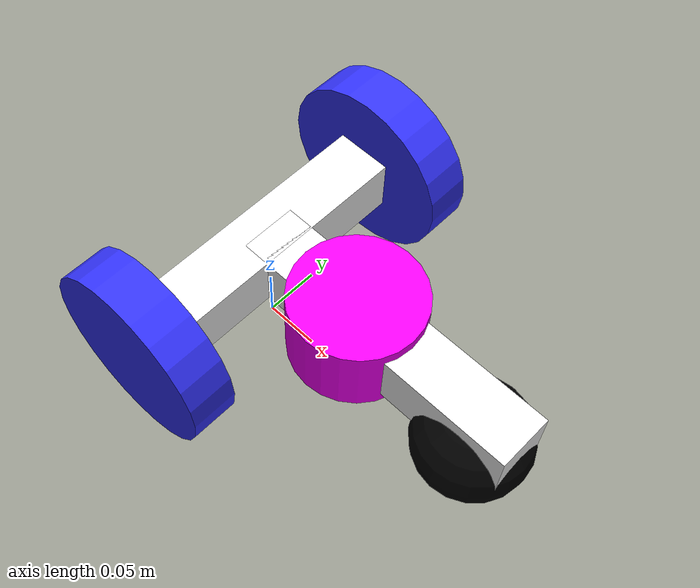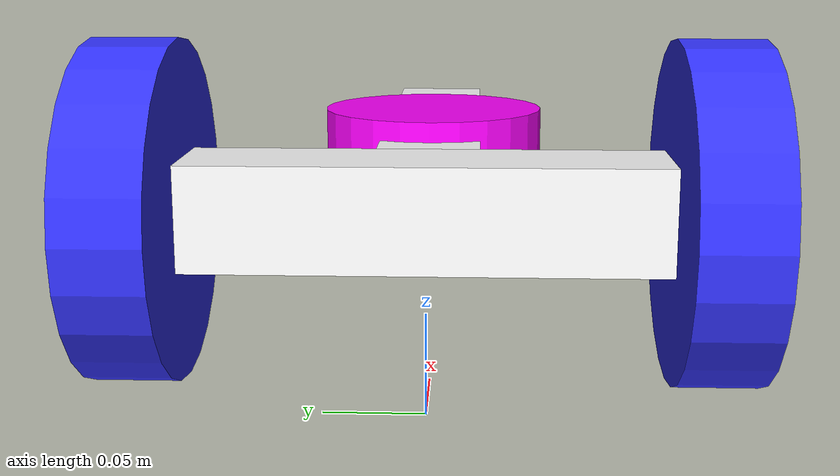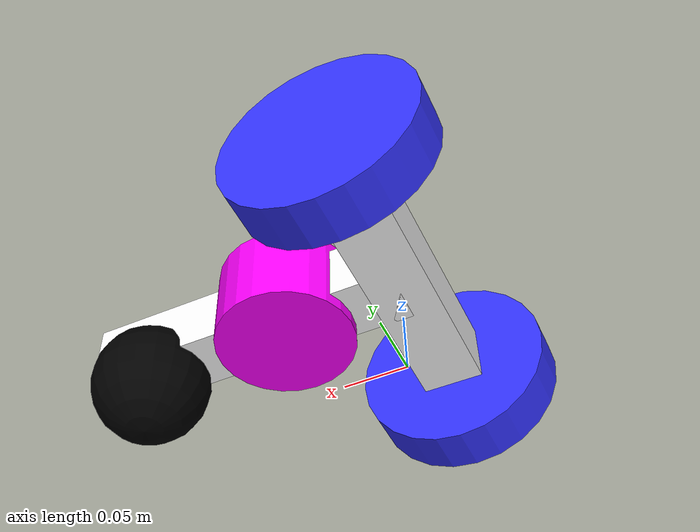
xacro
<?xml version="1.0"?>
<robot xmlns:xacro="http://www.ros.org/wiki/xacro"  name="robot">

    <xacro:include filename="robot_core.xacro"/>
    <xacro:include filename="lidar.xacro" />

    <xacro:include filename="ros2_control.xacro" />

</robot>

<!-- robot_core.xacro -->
<robot xmlns:xacro="http://www.ros.org/wiki/xacro">

    <!-- EDIT ROBOT DESCRIPTION HERE -->
    <xacro:property name="chassis_width" value="0.05" />
    <xacro:property name="chassis_length" value="0.266" />
    <xacro:property name="chassis_height" value="0.05" />

    <xacro:property name="wheel_radius" value="0.08" />
    <xacro:property name="wheel_thickness" value="0.04" />

    <xacro:include filename="inertial_macros.xacro" />

    <material name="white">
        <color rgba="1 1 1 1" />
    </material>

    <material name="orange">
        <color rgba="1 0.3 0.1 1"/>
    </material>

    <material name="blue">
        <color rgba="0.2 0.2 1 1"/>
    </material>

    <material name="black">
        <color rgba="0 0 0 1"/>
    </material>

    <material name="red">
        <color rgba="1 0 0 1"/>
    </material>

    <material name="yellow">
        <color rgba="1 1 0 1"/>
    </material>

    <material name="magenta">
        <color rgba="1 0 1 1" />
    </material>

    <link name="world_link">

    </link>

    <joint name="world_to_base_joint" type="fixed">
        <parent link="world_link" />
        <child link="base_link" />
        <origin xyz="0 0 0.02" />
    </joint>

    <!-- BASE LINK -->

    <link name="base_link">

    </link>

    <!-- BASE_FOOTPRINT LINK -->
    <joint name="base_footprint_joint" type="fixed">
        <parent link="base_link" />
        <child link="base_footprint" />
        <origin xyz="0 0 0" rpy="0 0 0" />

    </joint>

    <link name="base_footprint" >
    </link>

    <!-- CHASSIS -->

    <joint name="chassis_joint" type="fixed">
        <parent link="base_link" />
        <child link="chassis" />
        <origin xyz="0 0 0" />
    </joint>

    <link name="chassis">
        <visual>
            <origin xyz="0 0 ${wheel_radius}" />
            <geometry>
                <box size="${chassis_width} ${chassis_length} ${chassis_height}" />
            </geometry>
            <material name="white" />
        </visual>

        <collision>
            <origin xyz="0 0 ${wheel_radius/2}" />
            <geometry>
                <box size="${chassis_width} ${chassis_length} ${chassis_height}" />
            </geometry>

        </collision>
        <xacro:inertial_box mass="2.0" x="${chassis_width}" y="${chassis_length}" z="${chassis_height}">
            <origin xyz="0 0 ${wheel_radius}" rpy="0 0 0" />
        </xacro:inertial_box>
    </link>

    <gazebo reference="chassis">
        <material>Gazebo/White</material>
    </gazebo>

    <joint name="chassis2_joint" type="fixed">
        <parent link="chassis" />
        <child link="chassis2" />
        <origin xyz="0 0 0" />
    </joint>

    <link name="chassis2">
        <visual>
            <origin xyz="0.133 0 ${wheel_radius}" />
            <geometry>
                <box size="${chassis_length} ${chassis_width} ${chassis_height}" />
            </geometry>
            <material name="white" />
        </visual>

        <collision>
            <origin xyz="0 0 ${wheel_radius/2}" />
            <geometry>
                <box size="${chassis_length} ${chassis_width} ${chassis_height}" />
            </geometry>

        </collision>
        <xacro:inertial_box mass="2.0" x="${chassis_length}" y="${chassis_width}" z="${chassis_height}">
            <origin xyz="0.133 0 ${wheel_radius}" rpy="0 0 0" />
        </xacro:inertial_box>
    </link>

    <gazebo reference="chassis2">
        <material>Gazebo/White</material>
    </gazebo>

    <!-- RIGHT WHEEL LINK -->

    <joint name="right_wheel_joint" type="continuous">
        <parent link="base_link" />
        <child link="right_wheel" />
        <origin xyz="0 ${chassis_length/2} ${wheel_radius}" rpy="${pi/2} 0 0" />
        <axis xyz="0 0 1"/>
    </joint>

    <link name="right_wheel">

        <visual>
            <geometry>
                <cylinder radius="${wheel_radius}" length="${wheel_thickness}" />
            </geometry>
            <material name="blue" />
        </visual>

        <collision>
            <geometry>
                <cylinder radius="${wheel_radius}" length="${wheel_thickness}" />
            </geometry>
        </collision>

        <xacro:inertial_cylinder mass="0.5" length="${wheel_thickness}" radius="${wheel_radius}">
            <origin xyz="0 0 0" rpy="0 0 0" />
        </xacro:inertial_cylinder>

    </link>

    <gazebo reference="right_wheel">
        <material>Gazebo/Blue</material>
        <mu1 value="3" />
        <mu2 value="3" />
    </gazebo>

    <!-- LEFT WHEEL LINK -->
    <joint name="left_wheel_joint" type="continuous">
        <parent link="base_link" />
        <child link="left_wheel" />
        <origin xyz="0 ${-chassis_length/2} ${wheel_radius}" rpy="-${pi/2} 0 0" />
        <axis xyz="0 0 -1"/>
    </joint>

    <link name="left_wheel">

        <visual>
            <geometry>
                <cylinder radius="${wheel_radius}" length="${wheel_thickness}" />
            </geometry>
            <material name="blue" />
        </visual>

        <collision>
            <geometry>
                <cylinder radius="${wheel_radius}" length="${wheel_thickness}" />
            </geometry>
        </collision>

        <xacro:inertial_cylinder mass="0.5" length="${wheel_thickness}" radius="${wheel_radius}">
            <origin xyz="0 0 0" rpy="0 0 0" />
        </xacro:inertial_cylinder>

    </link>

    <gazebo reference="left_wheel">
        <material>Gazebo/Blue</material>
        <mu1 value="3" />
        <mu2 value="3" />
    </gazebo>

    <!-- CASTER WHEEL LINK -->

    <joint name="caster_wheel_joint" type="fixed">
        <parent link="chassis" />
        <child link="caster_wheel" />
        <origin xyz="0.225 0 0.05" />

    </joint>

    <link name="caster_wheel" >
        <visual>
            <geometry>
                <sphere radius="0.05"/>
            </geometry>
            <material name="black" />
        </visual>

        <collision>
            <geometry>
                <sphere radius="0.05"/>
            </geometry>
        </collision>
    </link>

    <gazebo reference="caster_wheel">
        <material>Gazebo/Black</material>
        <mu1 value="0.001" />
        <mu2 value="0.001" />
    </gazebo>

</robot>

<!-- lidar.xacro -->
<robot xmlns:xacro="http://www.ros.org/wiki/xacro">

    <joint name="lidar_joint" type="fixed">
        <parent link="chassis" />
        <child link="lidar_frame" />
        <origin xyz="0.1 0 0.08" rpy="0 0 0" />
    </joint>

    <link name="lidar_frame">
        <visual>
            <geometry>
                <cylinder radius="0.057" length="0.07" />
            </geometry>
            <material name="magenta" />
        </visual>

        <collision>
            <geometry>
                <cylinder radius="0.057" length="0.04" />
            </geometry>
        </collision>

        <xacro:inertial_cylinder mass="0.1" length="0.04" radius="0.057">
            <origin xyz="0 0 0" rpy="0 0 0" />
        </xacro:inertial_cylinder>

    </link>

    <gazebo reference="lidar_frame">
        <material>Gazebo/Purple</material>

        <sensor name="laser" type="ray">
            <pose> 0 0 0 0 0 0 </pose>
            <visualize>true</visualize>
            <update_rate>10</update_rate>
            <ray>
                <scan>
                    <horizontal>
                        <min_angle>-3.14</min_angle>
                        <max_angle>3.14</max_angle>
                    </horizontal>
                </scan>
                <range>
                    <min>0.4 </min>
                    <max> 12 </max>
                </range>
            </ray>

            <plugin name="laser_plugin" filename="libgazebo_ros_ray_sensor.so">
                <ros>
                    <argument>~/out:=scan</argument>
                </ros>
                <output_type>sensor_msgs/LaserScan</output_type>
                <frame_name>lidar_frame</frame_name>
            </plugin>
        </sensor>
    </gazebo>

</robot>
